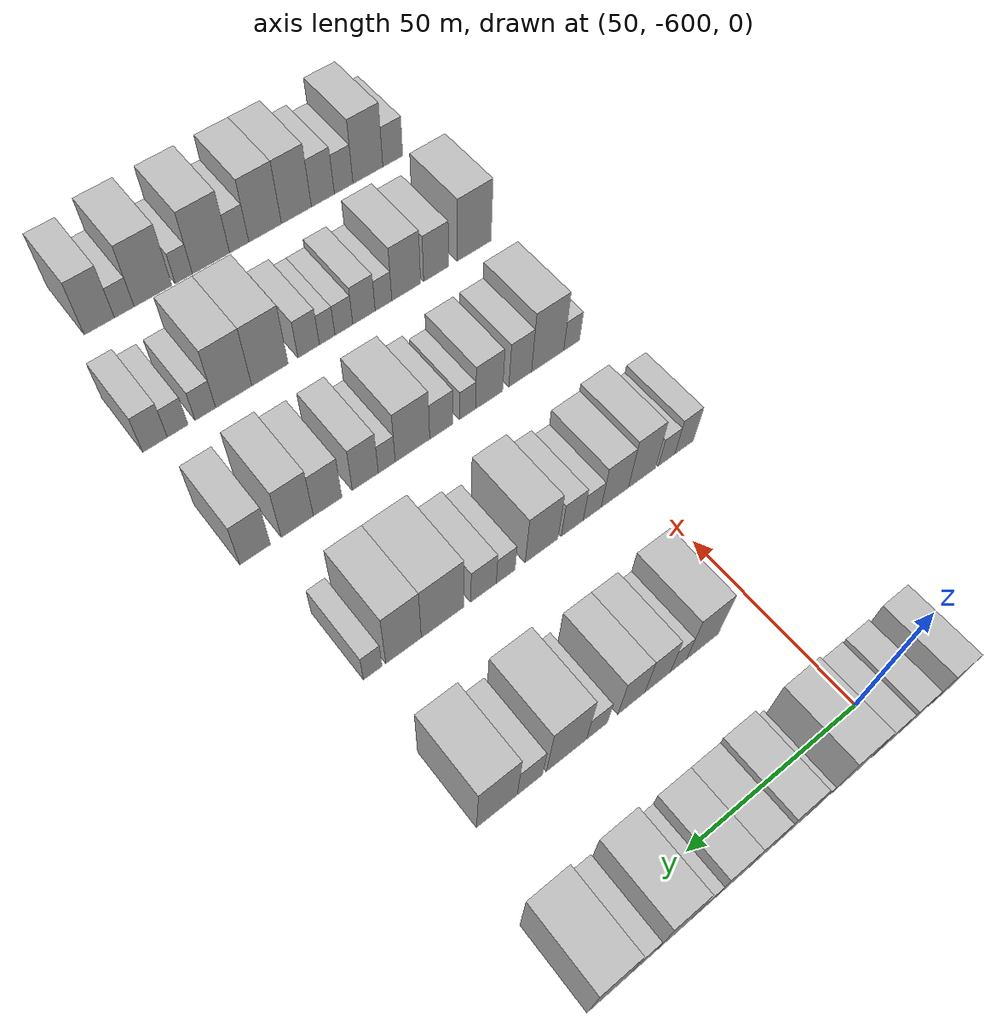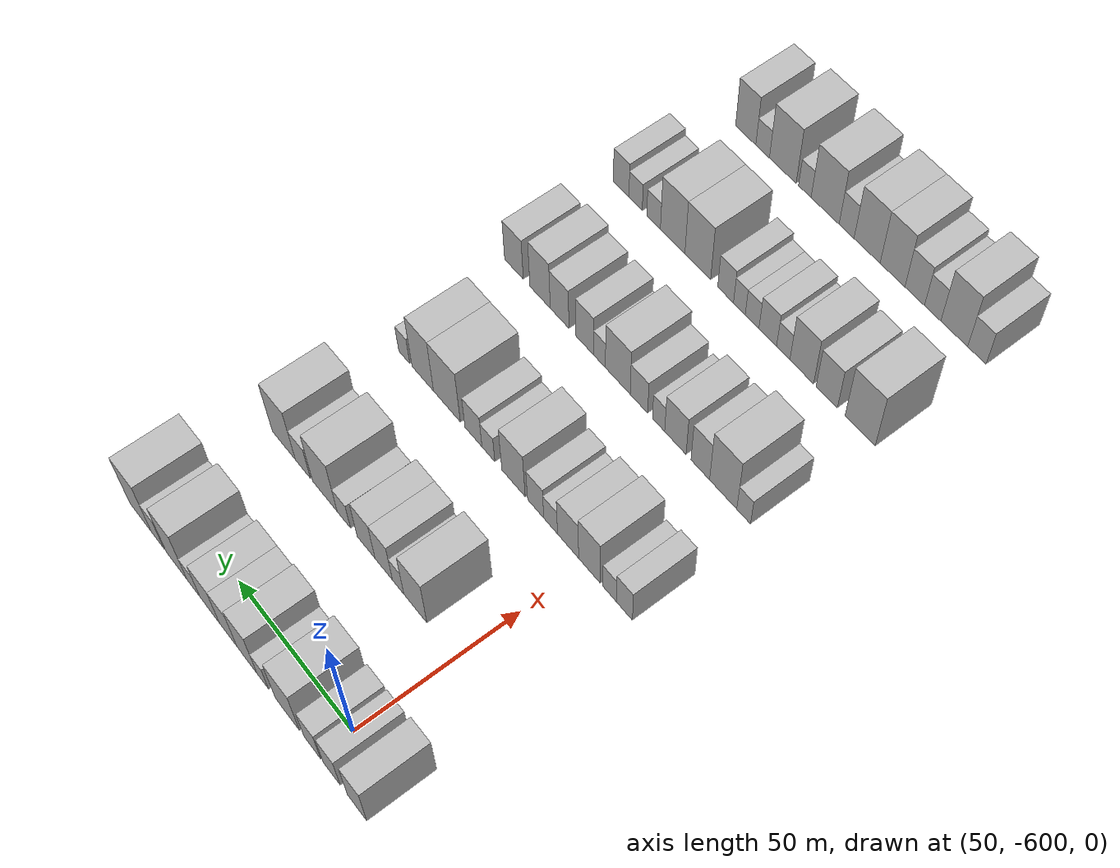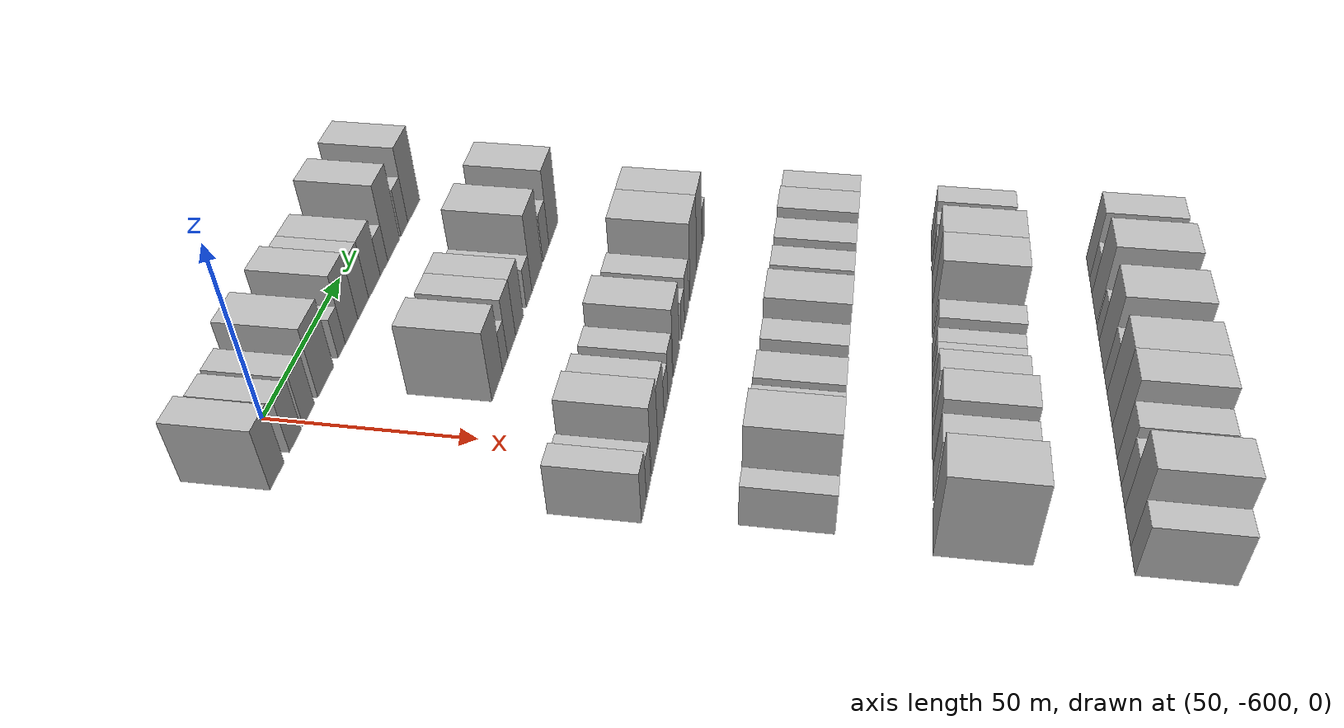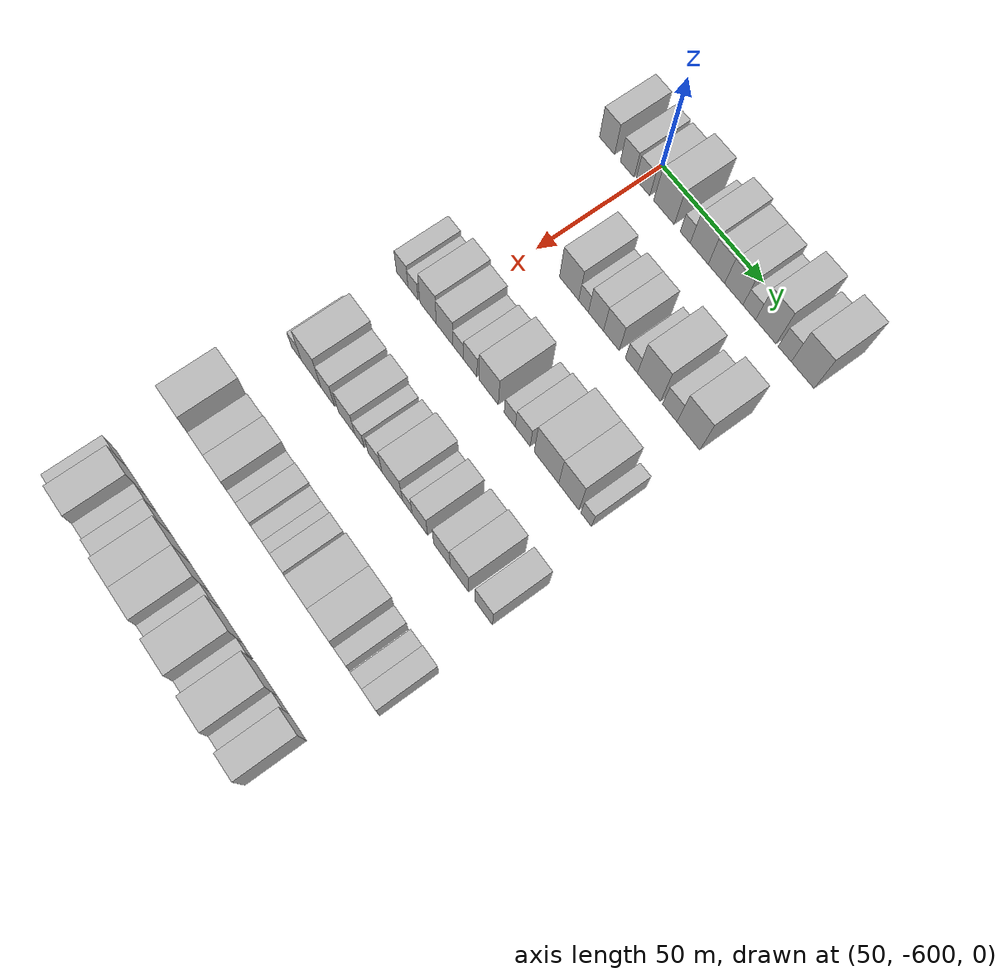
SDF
<sdf version="1.6">
 <world name="default">
  <model name="building_1">
   <static>1</static>
   <pose>50.0000 -616.0429 0 0.000000 0.000000 0.000000</pose>
   <link name="link">
    <pose>0 0 9.00 0 0 0</pose>
    <collision name="collision"><geometry><box><size>20.0000 7.9141 18.0000</size></box></geometry></collision>
    <visual name="visual">
     <cast_shadows>0</cast_shadows>
     <geometry><box><size>20.0000 7.9141 18.0000</size></box></geometry>
     <material>
      <script>
       <uri>model://HANNAS_wall/materials/scripts</uri>
       <uri>model://HANNAS_wall/materials/textures</uri>
       <name>vrc/HANNAS_wall</name>
      </script>
     </material>
    </visual>
   </link>
  </model>
  <model name="building_2">
   <static>1</static>
   <pose>50.0000 -605.5663 0 0.000000 0.000000 0.000000</pose>
   <link name="link">
    <pose>0 0 7.50 0 0 0</pose>
    <collision name="collision"><geometry><box><size>20.0000 7.0392 15.0000</size></box></geometry></collision>
    <visual name="visual">
     <cast_shadows>0</cast_shadows>
     <geometry><box><size>20.0000 7.0392 15.0000</size></box></geometry>
     <material>
      <script>
       <uri>model://HANNAS_wall/materials/scripts</uri>
       <uri>model://HANNAS_wall/materials/textures</uri>
       <name>vrc/HANNAS_wall</name>
      </script>
     </material>
    </visual>
   </link>
  </model>
  <model name="building_3">
   <static>1</static>
   <pose>50.0000 -597.5090 0 0.000000 0.000000 0.000000</pose>
   <link name="link">
    <pose>0 0 7.50 0 0 0</pose>
    <collision name="collision"><geometry><box><size>20.0000 7.0753 15.0000</size></box></geometry></collision>
    <visual name="visual">
     <cast_shadows>0</cast_shadows>
     <geometry><box><size>20.0000 7.0753 15.0000</size></box></geometry>
     <material>
      <script>
       <uri>model://HANNAS_wall/materials/scripts</uri>
       <uri>model://HANNAS_wall/materials/textures</uri>
       <name>vrc/HANNAS_wall</name>
      </script>
     </material>
    </visual>
   </link>
  </model>
  <model name="building_4">
   <static>1</static>
   <pose>50.0000 -586.7905 0 0.000000 0.000000 0.000000</pose>
   <link name="link">
    <pose>0 0 10.50 0 0 0</pose>
    <collision name="collision"><geometry><box><size>20.0000 10.3617 21.0000</size></box></geometry></collision>
    <visual name="visual">
     <cast_shadows>0</cast_shadows>
     <geometry><box><size>20.0000 10.3617 21.0000</size></box></geometry>
     <material>
      <script>
       <uri>model://HANNAS_wall/materials/scripts</uri>
       <uri>model://HANNAS_wall/materials/textures</uri>
       <name>vrc/HANNAS_wall</name>
      </script>
     </material>
    </visual>
   </link>
  </model>
  <model name="building_5">
   <static>1</static>
   <pose>50.0000 -576.1209 0 0.000000 0.000000 0.000000</pose>
   <link name="link">
    <pose>0 0 6.00 0 0 0</pose>
    <collision name="collision"><geometry><box><size>20.0000 4.9775 12.0000</size></box></geometry></collision>
    <visual name="visual">
     <cast_shadows>0</cast_shadows>
     <geometry><box><size>20.0000 4.9775 12.0000</size></box></geometry>
     <material>
      <script>
       <uri>model://HANNAS_wall/materials/scripts</uri>
       <uri>model://HANNAS_wall/materials/textures</uri>
       <name>vrc/HANNAS_wall</name>
      </script>
     </material>
    </visual>
   </link>
  </model>
  <model name="building_6">
   <static>1</static>
   <pose>50.0000 -569.1569 0 0.000000 0.000000 0.000000</pose>
   <link name="link">
    <pose>0 0 10.50 0 0 0</pose>
    <collision name="collision"><geometry><box><size>20.0000 8.9505 21.0000</size></box></geometry></collision>
    <visual name="visual">
     <cast_shadows>0</cast_shadows>
     <geometry><box><size>20.0000 8.9505 21.0000</size></box></geometry>
     <material>
      <script>
       <uri>model://HANNAS_wall/materials/scripts</uri>
       <uri>model://HANNAS_wall/materials/textures</uri>
       <name>vrc/HANNAS_wall</name>
      </script>
     </material>
    </visual>
   </link>
  </model>
  <model name="building_7">
   <static>1</static>
   <pose>50.0000 -560.7042 0 0.000000 0.000000 0.000000</pose>
   <link name="link">
    <pose>0 0 9.00 0 0 0</pose>
    <collision name="collision"><geometry><box><size>20.0000 7.9549 18.0000</size></box></geometry></collision>
    <visual name="visual">
     <cast_shadows>0</cast_shadows>
     <geometry><box><size>20.0000 7.9549 18.0000</size></box></geometry>
     <material>
      <script>
       <uri>model://HANNAS_wall/materials/scripts</uri>
       <uri>model://HANNAS_wall/materials/textures</uri>
       <name>vrc/HANNAS_wall</name>
      </script>
     </material>
    </visual>
   </link>
  </model>
  <model name="building_8">
   <static>1</static>
   <pose>50.0000 -552.2844 0 0.000000 0.000000 0.000000</pose>
   <link name="link">
    <pose>0 0 9.00 0 0 0</pose>
    <collision name="collision"><geometry><box><size>20.0000 8.8848 18.0000</size></box></geometry></collision>
    <visual name="visual">
     <cast_shadows>0</cast_shadows>
     <geometry><box><size>20.0000 8.8848 18.0000</size></box></geometry>
     <material>
      <script>
       <uri>model://HANNAS_wall/materials/scripts</uri>
       <uri>model://HANNAS_wall/materials/textures</uri>
       <name>vrc/HANNAS_wall</name>
      </script>
     </material>
    </visual>
   </link>
  </model>
  <model name="building_9">
   <static>1</static>
   <pose>50.0000 -544.8420 0 0.000000 0.000000 0.000000</pose>
   <link name="link">
    <pose>0 0 6.00 0 0 0</pose>
    <collision name="collision"><geometry><box><size>20.0000 5.9998 12.0000</size></box></geometry></collision>
    <visual name="visual">
     <cast_shadows>0</cast_shadows>
     <geometry><box><size>20.0000 5.9998 12.0000</size></box></geometry>
     <material>
      <script>
       <uri>model://HANNAS_wall/materials/scripts</uri>
       <uri>model://HANNAS_wall/materials/textures</uri>
       <name>vrc/HANNAS_wall</name>
      </script>
     </material>
    </visual>
   </link>
  </model>
  <model name="building_10">
   <static>1</static>
   <pose>50.0000 -536.9732 0 0.000000 0.000000 0.000000</pose>
   <link name="link">
    <pose>0 0 12.00 0 0 0</pose>
    <collision name="collision"><geometry><box><size>20.0000 9.7379 24.0000</size></box></geometry></collision>
    <visual name="visual">
     <cast_shadows>0</cast_shadows>
     <geometry><box><size>20.0000 9.7379 24.0000</size></box></geometry>
     <material>
      <script>
       <uri>model://HANNAS_wall/materials/scripts</uri>
       <uri>model://HANNAS_wall/materials/textures</uri>
       <name>vrc/HANNAS_wall</name>
      </script>
     </material>
    </visual>
   </link>
  </model>
  <model name="building_11">
   <static>1</static>
   <pose>50.0000 -528.0566 0 0.000000 0.000000 0.000000</pose>
   <link name="link">
    <pose>0 0 7.50 0 0 0</pose>
    <collision name="collision"><geometry><box><size>20.0000 6.0952 15.0000</size></box></geometry></collision>
    <visual name="visual">
     <cast_shadows>0</cast_shadows>
     <geometry><box><size>20.0000 6.0952 15.0000</size></box></geometry>
     <material>
      <script>
       <uri>model://HANNAS_wall/materials/scripts</uri>
       <uri>model://HANNAS_wall/materials/textures</uri>
       <name>vrc/HANNAS_wall</name>
      </script>
     </material>
    </visual>
   </link>
  </model>
  <model name="building_12">
   <static>1</static>
   <pose>50.0000 -519.7207 0 0.000000 0.000000 0.000000</pose>
   <link name="link">
    <pose>0 0 12.00 0 0 0</pose>
    <collision name="collision"><geometry><box><size>20.0000 10.5767 24.0000</size></box></geometry></collision>
    <visual name="visual">
     <cast_shadows>0</cast_shadows>
     <geometry><box><size>20.0000 10.5767 24.0000</size></box></geometry>
     <material>
      <script>
       <uri>model://HANNAS_wall/materials/scripts</uri>
       <uri>model://HANNAS_wall/materials/textures</uri>
       <name>vrc/HANNAS_wall</name>
      </script>
     </material>
    </visual>
   </link>
  </model>
  <model name="building_139">
   <static>1</static>
   <pose>90.0000 -583.3680 0 0.000000 0.000000 0.000000</pose>
   <link name="link">
    <pose>0 0 10.50 0 0 0</pose>
    <collision name="collision"><geometry><box><size>20.0000 9.7547 21.0000</size></box></geometry></collision>
    <visual name="visual">
     <cast_shadows>0</cast_shadows>
     <geometry><box><size>20.0000 9.7547 21.0000</size></box></geometry>
     <material>
      <script>
       <uri>model://HANNAS_wall/materials/scripts</uri>
       <uri>model://HANNAS_wall/materials/textures</uri>
       <name>vrc/HANNAS_wall</name>
      </script>
     </material>
    </visual>
   </link>
  </model>
  <model name="building_140">
   <static>1</static>
   <pose>90.0000 -576.0469 0 0.000000 0.000000 0.000000</pose>
   <link name="link">
    <pose>0 0 6.00 0 0 0</pose>
    <collision name="collision"><geometry><box><size>20.0000 4.8876 12.0000</size></box></geometry></collision>
    <visual name="visual">
     <cast_shadows>0</cast_shadows>
     <geometry><box><size>20.0000 4.8876 12.0000</size></box></geometry>
     <material>
      <script>
       <uri>model://HANNAS_wall/materials/scripts</uri>
       <uri>model://HANNAS_wall/materials/textures</uri>
       <name>vrc/HANNAS_wall</name>
      </script>
     </material>
    </visual>
   </link>
  </model>
  <model name="building_141">
   <static>1</static>
   <pose>90.0000 -569.8204 0 0.000000 0.000000 0.000000</pose>
   <link name="link">
    <pose>0 0 9.00 0 0 0</pose>
    <collision name="collision"><geometry><box><size>20.0000 7.5654 18.0000</size></box></geometry></collision>
    <visual name="visual">
     <cast_shadows>0</cast_shadows>
     <geometry><box><size>20.0000 7.5654 18.0000</size></box></geometry>
     <material>
      <script>
       <uri>model://HANNAS_wall/materials/scripts</uri>
       <uri>model://HANNAS_wall/materials/textures</uri>
       <name>vrc/HANNAS_wall</name>
      </script>
     </material>
    </visual>
   </link>
  </model>
  <model name="building_142">
   <static>1</static>
   <pose>90.0000 -562.1279 0 0.000000 0.000000 0.000000</pose>
   <link name="link">
    <pose>0 0 9.00 0 0 0</pose>
    <collision name="collision"><geometry><box><size>20.0000 7.8196 18.0000</size></box></geometry></collision>
    <visual name="visual">
     <cast_shadows>0</cast_shadows>
     <geometry><box><size>20.0000 7.8196 18.0000</size></box></geometry>
     <material>
      <script>
       <uri>model://HANNAS_wall/materials/scripts</uri>
       <uri>model://HANNAS_wall/materials/textures</uri>
       <name>vrc/HANNAS_wall</name>
      </script>
     </material>
    </visual>
   </link>
  </model>
  <model name="building_143">
   <static>1</static>
   <pose>90.0000 -552.2347 0 0.000000 0.000000 0.000000</pose>
   <link name="link">
    <pose>0 0 6.00 0 0 0</pose>
    <collision name="collision"><geometry><box><size>20.0000 5.9668 12.0000</size></box></geometry></collision>
    <visual name="visual">
     <cast_shadows>0</cast_shadows>
     <geometry><box><size>20.0000 5.9668 12.0000</size></box></geometry>
     <material>
      <script>
       <uri>model://HANNAS_wall/materials/scripts</uri>
       <uri>model://HANNAS_wall/materials/textures</uri>
       <name>vrc/HANNAS_wall</name>
      </script>
     </material>
    </visual>
   </link>
  </model>
  <model name="building_144">
   <static>1</static>
   <pose>90.0000 -543.6859 0 0.000000 0.000000 0.000000</pose>
   <link name="link">
    <pose>0 0 12.00 0 0 0</pose>
    <collision name="collision"><geometry><box><size>20.0000 11.1310 24.0000</size></box></geometry></collision>
    <visual name="visual">
     <cast_shadows>0</cast_shadows>
     <geometry><box><size>20.0000 11.1310 24.0000</size></box></geometry>
     <material>
      <script>
       <uri>model://HANNAS_wall/materials/scripts</uri>
       <uri>model://HANNAS_wall/materials/textures</uri>
       <name>vrc/HANNAS_wall</name>
      </script>
     </material>
    </visual>
   </link>
  </model>
  <model name="building_145">
   <static>1</static>
   <pose>90.0000 -533.6597 0 0.000000 0.000000 0.000000</pose>
   <link name="link">
    <pose>0 0 7.50 0 0 0</pose>
    <collision name="collision"><geometry><box><size>20.0000 6.9213 15.0000</size></box></geometry></collision>
    <visual name="visual">
     <cast_shadows>0</cast_shadows>
     <geometry><box><size>20.0000 6.9213 15.0000</size></box></geometry>
     <material>
      <script>
       <uri>model://HANNAS_wall/materials/scripts</uri>
       <uri>model://HANNAS_wall/materials/textures</uri>
       <name>vrc/HANNAS_wall</name>
      </script>
     </material>
    </visual>
   </link>
  </model>
  <model name="building_146">
   <static>1</static>
   <pose>90.0000 -524.8179 0 0.000000 0.000000 0.000000</pose>
   <link name="link">
    <pose>0 0 12.00 0 0 0</pose>
    <collision name="collision"><geometry><box><size>20.0000 10.7624 24.0000</size></box></geometry></collision>
    <visual name="visual">
     <cast_shadows>0</cast_shadows>
     <geometry><box><size>20.0000 10.7624 24.0000</size></box></geometry>
     <material>
      <script>
       <uri>model://HANNAS_wall/materials/scripts</uri>
       <uri>model://HANNAS_wall/materials/textures</uri>
       <name>vrc/HANNAS_wall</name>
      </script>
     </material>
    </visual>
   </link>
  </model>
  <model name="building_273">
   <static>1</static>
   <pose>130.0000 -615.8726 0 0.000000 0.000000 0.000000</pose>
   <link name="link">
    <pose>0 0 7.50 0 0 0</pose>
    <collision name="collision"><geometry><box><size>20.0000 6.2548 15.0000</size></box></geometry></collision>
    <visual name="visual">
     <cast_shadows>0</cast_shadows>
     <geometry><box><size>20.0000 6.2548 15.0000</size></box></geometry>
     <material>
      <script>
       <uri>model://HANNAS_wall/materials/scripts</uri>
       <uri>model://HANNAS_wall/materials/textures</uri>
       <name>vrc/HANNAS_wall</name>
      </script>
     </material>
    </visual>
   </link>
  </model>
  <model name="building_274">
   <static>1</static>
   <pose>130.0000 -610.0368 0 0.000000 0.000000 0.000000</pose>
   <link name="link">
    <pose>0 0 6.00 0 0 0</pose>
    <collision name="collision"><geometry><box><size>20.0000 5.4168 12.0000</size></box></geometry></collision>
    <visual name="visual">
     <cast_shadows>0</cast_shadows>
     <geometry><box><size>20.0000 5.4168 12.0000</size></box></geometry>
     <material>
      <script>
       <uri>model://HANNAS_wall/materials/scripts</uri>
       <uri>model://HANNAS_wall/materials/textures</uri>
       <name>vrc/HANNAS_wall</name>
      </script>
     </material>
    </visual>
   </link>
  </model>
  <model name="building_275">
   <static>1</static>
   <pose>130.0000 -601.9514 0 0.000000 0.000000 0.000000</pose>
   <link name="link">
    <pose>0 0 10.50 0 0 0</pose>
    <collision name="collision"><geometry><box><size>20.0000 8.7539 21.0000</size></box></geometry></collision>
    <visual name="visual">
     <cast_shadows>0</cast_shadows>
     <geometry><box><size>20.0000 8.7539 21.0000</size></box></geometry>
     <material>
      <script>
       <uri>model://HANNAS_wall/materials/scripts</uri>
       <uri>model://HANNAS_wall/materials/textures</uri>
       <name>vrc/HANNAS_wall</name>
      </script>
     </material>
    </visual>
   </link>
  </model>
  <model name="building_276">
   <static>1</static>
   <pose>130.0000 -593.2582 0 0.000000 0.000000 0.000000</pose>
   <link name="link">
    <pose>0 0 9.00 0 0 0</pose>
    <collision name="collision"><geometry><box><size>20.0000 8.6323 18.0000</size></box></geometry></collision>
    <visual name="visual">
     <cast_shadows>0</cast_shadows>
     <geometry><box><size>20.0000 8.6323 18.0000</size></box></geometry>
     <material>
      <script>
       <uri>model://HANNAS_wall/materials/scripts</uri>
       <uri>model://HANNAS_wall/materials/textures</uri>
       <name>vrc/HANNAS_wall</name>
      </script>
     </material>
    </visual>
   </link>
  </model>
  <model name="building_277">
   <static>1</static>
   <pose>130.0000 -586.0995 0 0.000000 0.000000 0.000000</pose>
   <link name="link">
    <pose>0 0 6.00 0 0 0</pose>
    <collision name="collision"><geometry><box><size>20.0000 5.6850 12.0000</size></box></geometry></collision>
    <visual name="visual">
     <cast_shadows>0</cast_shadows>
     <geometry><box><size>20.0000 5.6850 12.0000</size></box></geometry>
     <material>
      <script>
       <uri>model://HANNAS_wall/materials/scripts</uri>
       <uri>model://HANNAS_wall/materials/textures</uri>
       <name>vrc/HANNAS_wall</name>
      </script>
     </material>
    </visual>
   </link>
  </model>
  <model name="building_278">
   <static>1</static>
   <pose>130.0000 -579.8710 0 0.000000 0.000000 0.000000</pose>
   <link name="link">
    <pose>0 0 7.50 0 0 0</pose>
    <collision name="collision"><geometry><box><size>20.0000 6.7720 15.0000</size></box></geometry></collision>
    <visual name="visual">
     <cast_shadows>0</cast_shadows>
     <geometry><box><size>20.0000 6.7720 15.0000</size></box></geometry>
     <material>
      <script>
       <uri>model://HANNAS_wall/materials/scripts</uri>
       <uri>model://HANNAS_wall/materials/textures</uri>
       <name>vrc/HANNAS_wall</name>
      </script>
     </material>
    </visual>
   </link>
  </model>
  <model name="building_279">
   <static>1</static>
   <pose>130.0000 -570.5267 0 0.000000 0.000000 0.000000</pose>
   <link name="link">
    <pose>0 0 10.50 0 0 0</pose>
    <collision name="collision"><geometry><box><size>20.0000 9.9166 21.0000</size></box></geometry></collision>
    <visual name="visual">
     <cast_shadows>0</cast_shadows>
     <geometry><box><size>20.0000 9.9166 21.0000</size></box></geometry>
     <material>
      <script>
       <uri>model://HANNAS_wall/materials/scripts</uri>
       <uri>model://HANNAS_wall/materials/textures</uri>
       <name>vrc/HANNAS_wall</name>
      </script>
     </material>
    </visual>
   </link>
  </model>
  <model name="building_280">
   <static>1</static>
   <pose>130.0000 -559.7854 0 0.000000 0.000000 0.000000</pose>
   <link name="link">
    <pose>0 0 6.00 0 0 0</pose>
    <collision name="collision"><geometry><box><size>20.0000 5.5660 12.0000</size></box></geometry></collision>
    <visual name="visual">
     <cast_shadows>0</cast_shadows>
     <geometry><box><size>20.0000 5.5660 12.0000</size></box></geometry>
     <material>
      <script>
       <uri>model://HANNAS_wall/materials/scripts</uri>
       <uri>model://HANNAS_wall/materials/textures</uri>
       <name>vrc/HANNAS_wall</name>
      </script>
     </material>
    </visual>
   </link>
  </model>
  <model name="building_281">
   <static>1</static>
   <pose>130.0000 -553.2885 0 0.000000 0.000000 0.000000</pose>
   <link name="link">
    <pose>0 0 7.50 0 0 0</pose>
    <collision name="collision"><geometry><box><size>20.0000 7.4278 15.0000</size></box></geometry></collision>
    <visual name="visual">
     <cast_shadows>0</cast_shadows>
     <geometry><box><size>20.0000 7.4278 15.0000</size></box></geometry>
     <material>
      <script>
       <uri>model://HANNAS_wall/materials/scripts</uri>
       <uri>model://HANNAS_wall/materials/textures</uri>
       <name>vrc/HANNAS_wall</name>
      </script>
     </material>
    </visual>
   </link>
  </model>
  <model name="building_282">
   <static>1</static>
   <pose>130.0000 -541.5813 0 0.000000 0.000000 0.000000</pose>
   <link name="link">
    <pose>0 0 12.00 0 0 0</pose>
    <collision name="collision"><geometry><box><size>20.0000 11.9864 24.0000</size></box></geometry></collision>
    <visual name="visual">
     <cast_shadows>0</cast_shadows>
     <geometry><box><size>20.0000 11.9864 24.0000</size></box></geometry>
     <material>
      <script>
       <uri>model://HANNAS_wall/materials/scripts</uri>
       <uri>model://HANNAS_wall/materials/textures</uri>
       <name>vrc/HANNAS_wall</name>
      </script>
     </material>
    </visual>
   </link>
  </model>
  <model name="building_283">
   <static>1</static>
   <pose>130.0000 -530.6979 0 0.000000 0.000000 0.000000</pose>
   <link name="link">
    <pose>0 0 12.00 0 0 0</pose>
    <collision name="collision"><geometry><box><size>20.0000 9.7806 24.0000</size></box></geometry></collision>
    <visual name="visual">
     <cast_shadows>0</cast_shadows>
     <geometry><box><size>20.0000 9.7806 24.0000</size></box></geometry>
     <material>
      <script>
       <uri>model://HANNAS_wall/materials/scripts</uri>
       <uri>model://HANNAS_wall/materials/textures</uri>
       <name>vrc/HANNAS_wall</name>
      </script>
     </material>
    </visual>
   </link>
  </model>
  <model name="building_284">
   <static>1</static>
   <pose>130.0000 -522.2868 0 0.000000 0.000000 0.000000</pose>
   <link name="link">
    <pose>0 0 6.00 0 0 0</pose>
    <collision name="collision"><geometry><box><size>20.0000 5.0415 12.0000</size></box></geometry></collision>
    <visual name="visual">
     <cast_shadows>0</cast_shadows>
     <geometry><box><size>20.0000 5.0415 12.0000</size></box></geometry>
     <material>
      <script>
       <uri>model://HANNAS_wall/materials/scripts</uri>
       <uri>model://HANNAS_wall/materials/textures</uri>
       <name>vrc/HANNAS_wall</name>
      </script>
     </material>
    </visual>
   </link>
  </model>
  <model name="building_414">
   <static>1</static>
   <pose>170.0000 -614.3152 0 0.000000 0.000000 0.000000</pose>
   <link name="link">
    <pose>0 0 6.00 0 0 0</pose>
    <collision name="collision"><geometry><box><size>20.0000 5.3696 12.0000</size></box></geometry></collision>
    <visual name="visual">
     <cast_shadows>0</cast_shadows>
     <geometry><box><size>20.0000 5.3696 12.0000</size></box></geometry>
     <material>
      <script>
       <uri>model://HANNAS_wall/materials/scripts</uri>
       <uri>model://HANNAS_wall/materials/textures</uri>
       <name>vrc/HANNAS_wall</name>
      </script>
     </material>
    </visual>
   </link>
  </model>
  <model name="building_415">
   <static>1</static>
   <pose>170.0000 -606.2697 0 0.000000 0.000000 0.000000</pose>
   <link name="link">
    <pose>0 0 12.00 0 0 0</pose>
    <collision name="collision"><geometry><box><size>20.0000 10.7214 24.0000</size></box></geometry></collision>
    <visual name="visual">
     <cast_shadows>0</cast_shadows>
     <geometry><box><size>20.0000 10.7214 24.0000</size></box></geometry>
     <material>
      <script>
       <uri>model://HANNAS_wall/materials/scripts</uri>
       <uri>model://HANNAS_wall/materials/textures</uri>
       <name>vrc/HANNAS_wall</name>
      </script>
     </material>
    </visual>
   </link>
  </model>
  <model name="building_416">
   <static>1</static>
   <pose>170.0000 -597.2026 0 0.000000 0.000000 0.000000</pose>
   <link name="link">
    <pose>0 0 9.00 0 0 0</pose>
    <collision name="collision"><geometry><box><size>20.0000 7.4129 18.0000</size></box></geometry></collision>
    <visual name="visual">
     <cast_shadows>0</cast_shadows>
     <geometry><box><size>20.0000 7.4129 18.0000</size></box></geometry>
     <material>
      <script>
       <uri>model://HANNAS_wall/materials/scripts</uri>
       <uri>model://HANNAS_wall/materials/textures</uri>
       <name>vrc/HANNAS_wall</name>
      </script>
     </material>
    </visual>
   </link>
  </model>
  <model name="building_417">
   <static>1</static>
   <pose>170.0000 -587.1444 0 0.000000 0.000000 0.000000</pose>
   <link name="link">
    <pose>0 0 9.00 0 0 0</pose>
    <collision name="collision"><geometry><box><size>20.0000 8.7034 18.0000</size></box></geometry></collision>
    <visual name="visual">
     <cast_shadows>0</cast_shadows>
     <geometry><box><size>20.0000 8.7034 18.0000</size></box></geometry>
     <material>
      <script>
       <uri>model://HANNAS_wall/materials/scripts</uri>
       <uri>model://HANNAS_wall/materials/textures</uri>
       <name>vrc/HANNAS_wall</name>
      </script>
     </material>
    </visual>
   </link>
  </model>
  <model name="building_418">
   <static>1</static>
   <pose>170.0000 -580.2808 0 0.000000 0.000000 0.000000</pose>
   <link name="link">
    <pose>0 0 6.00 0 0 0</pose>
    <collision name="collision"><geometry><box><size>20.0000 5.0240 12.0000</size></box></geometry></collision>
    <visual name="visual">
     <cast_shadows>0</cast_shadows>
     <geometry><box><size>20.0000 5.0240 12.0000</size></box></geometry>
     <material>
      <script>
       <uri>model://HANNAS_wall/materials/scripts</uri>
       <uri>model://HANNAS_wall/materials/textures</uri>
       <name>vrc/HANNAS_wall</name>
      </script>
     </material>
    </visual>
   </link>
  </model>
  <model name="building_419">
   <static>1</static>
   <pose>170.0000 -572.1450 0 0.000000 0.000000 0.000000</pose>
   <link name="link">
    <pose>0 0 7.50 0 0 0</pose>
    <collision name="collision"><geometry><box><size>20.0000 7.2475 15.0000</size></box></geometry></collision>
    <visual name="visual">
     <cast_shadows>0</cast_shadows>
     <geometry><box><size>20.0000 7.2475 15.0000</size></box></geometry>
     <material>
      <script>
       <uri>model://HANNAS_wall/materials/scripts</uri>
       <uri>model://HANNAS_wall/materials/textures</uri>
       <name>vrc/HANNAS_wall</name>
      </script>
     </material>
    </visual>
   </link>
  </model>
  <model name="building_420">
   <static>1</static>
   <pose>170.0000 -563.2833 0 0.000000 0.000000 0.000000</pose>
   <link name="link">
    <pose>0 0 10.50 0 0 0</pose>
    <collision name="collision"><geometry><box><size>20.0000 10.4760 21.0000</size></box></geometry></collision>
    <visual name="visual">
     <cast_shadows>0</cast_shadows>
     <geometry><box><size>20.0000 10.4760 21.0000</size></box></geometry>
     <material>
      <script>
       <uri>model://HANNAS_wall/materials/scripts</uri>
       <uri>model://HANNAS_wall/materials/textures</uri>
       <name>vrc/HANNAS_wall</name>
      </script>
     </material>
    </visual>
   </link>
  </model>
  <model name="building_421">
   <static>1</static>
   <pose>170.0000 -555.5232 0 0.000000 0.000000 0.000000</pose>
   <link name="link">
    <pose>0 0 6.00 0 0 0</pose>
    <collision name="collision"><geometry><box><size>20.0000 5.0442 12.0000</size></box></geometry></collision>
    <visual name="visual">
     <cast_shadows>0</cast_shadows>
     <geometry><box><size>20.0000 5.0442 12.0000</size></box></geometry>
     <material>
      <script>
       <uri>model://HANNAS_wall/materials/scripts</uri>
       <uri>model://HANNAS_wall/materials/textures</uri>
       <name>vrc/HANNAS_wall</name>
      </script>
     </material>
    </visual>
   </link>
  </model>
  <model name="building_422">
   <static>1</static>
   <pose>170.0000 -549.1558 0 0.000000 0.000000 0.000000</pose>
   <link name="link">
    <pose>0 0 9.00 0 0 0</pose>
    <collision name="collision"><geometry><box><size>20.0000 7.6904 18.0000</size></box></geometry></collision>
    <visual name="visual">
     <cast_shadows>0</cast_shadows>
     <geometry><box><size>20.0000 7.6904 18.0000</size></box></geometry>
     <material>
      <script>
       <uri>model://HANNAS_wall/materials/scripts</uri>
       <uri>model://HANNAS_wall/materials/textures</uri>
       <name>vrc/HANNAS_wall</name>
      </script>
     </material>
    </visual>
   </link>
  </model>
  <model name="building_423">
   <static>1</static>
   <pose>170.0000 -538.1978 0 0.000000 0.000000 0.000000</pose>
   <link name="link">
    <pose>0 0 9.00 0 0 0</pose>
    <collision name="collision"><geometry><box><size>20.0000 8.2257 18.0000</size></box></geometry></collision>
    <visual name="visual">
     <cast_shadows>0</cast_shadows>
     <geometry><box><size>20.0000 8.2257 18.0000</size></box></geometry>
     <material>
      <script>
       <uri>model://HANNAS_wall/materials/scripts</uri>
       <uri>model://HANNAS_wall/materials/textures</uri>
       <name>vrc/HANNAS_wall</name>
      </script>
     </material>
    </visual>
   </link>
  </model>
  <model name="building_424">
   <static>1</static>
   <pose>170.0000 -529.5459 0 0.000000 0.000000 0.000000</pose>
   <link name="link">
    <pose>0 0 10.50 0 0 0</pose>
    <collision name="collision"><geometry><box><size>20.0000 9.0779 21.0000</size></box></geometry></collision>
    <visual name="visual">
     <cast_shadows>0</cast_shadows>
     <geometry><box><size>20.0000 9.0779 21.0000</size></box></geometry>
     <material>
      <script>
       <uri>model://HANNAS_wall/materials/scripts</uri>
       <uri>model://HANNAS_wall/materials/textures</uri>
       <name>vrc/HANNAS_wall</name>
      </script>
     </material>
    </visual>
   </link>
  </model>
  <model name="building_425">
   <static>1</static>
   <pose>170.0000 -517.7872 0 0.000000 0.000000 0.000000</pose>
   <link name="link">
    <pose>0 0 9.00 0 0 0</pose>
    <collision name="collision"><geometry><box><size>20.0000 8.4395 18.0000</size></box></geometry></collision>
    <visual name="visual">
     <cast_shadows>0</cast_shadows>
     <geometry><box><size>20.0000 8.4395 18.0000</size></box></geometry>
     <material>
      <script>
       <uri>model://HANNAS_wall/materials/scripts</uri>
       <uri>model://HANNAS_wall/materials/textures</uri>
       <name>vrc/HANNAS_wall</name>
      </script>
     </material>
    </visual>
   </link>
  </model>
  <model name="building_547">
   <static>1</static>
   <pose>210.0000 -614.2096 0 0.000000 0.000000 0.000000</pose>
   <link name="link">
    <pose>0 0 12.00 0 0 0</pose>
    <collision name="collision"><geometry><box><size>20.0000 11.5808 24.0000</size></box></geometry></collision>
    <visual name="visual">
     <cast_shadows>0</cast_shadows>
     <geometry><box><size>20.0000 11.5808 24.0000</size></box></geometry>
     <material>
      <script>
       <uri>model://HANNAS_wall/materials/scripts</uri>
       <uri>model://HANNAS_wall/materials/textures</uri>
       <name>vrc/HANNAS_wall</name>
      </script>
     </material>
    </visual>
   </link>
  </model>
  <model name="building_548">
   <static>1</static>
   <pose>210.0000 -601.2410 0 0.000000 0.000000 0.000000</pose>
   <link name="link">
    <pose>0 0 9.00 0 0 0</pose>
    <collision name="collision"><geometry><box><size>20.0000 8.3565 18.0000</size></box></geometry></collision>
    <visual name="visual">
     <cast_shadows>0</cast_shadows>
     <geometry><box><size>20.0000 8.3565 18.0000</size></box></geometry>
     <material>
      <script>
       <uri>model://HANNAS_wall/materials/scripts</uri>
       <uri>model://HANNAS_wall/materials/textures</uri>
       <name>vrc/HANNAS_wall</name>
      </script>
     </material>
    </visual>
   </link>
  </model>
  <model name="building_549">
   <static>1</static>
   <pose>210.0000 -591.3188 0 0.000000 0.000000 0.000000</pose>
   <link name="link">
    <pose>0 0 10.50 0 0 0</pose>
    <collision name="collision"><geometry><box><size>20.0000 9.4879 21.0000</size></box></geometry></collision>
    <visual name="visual">
     <cast_shadows>0</cast_shadows>
     <geometry><box><size>20.0000 9.4879 21.0000</size></box></geometry>
     <material>
      <script>
       <uri>model://HANNAS_wall/materials/scripts</uri>
       <uri>model://HANNAS_wall/materials/textures</uri>
       <name>vrc/HANNAS_wall</name>
      </script>
     </material>
    </visual>
   </link>
  </model>
  <model name="building_550">
   <static>1</static>
   <pose>210.0000 -583.8834 0 0.000000 0.000000 0.000000</pose>
   <link name="link">
    <pose>0 0 6.00 0 0 0</pose>
    <collision name="collision"><geometry><box><size>20.0000 5.3828 12.0000</size></box></geometry></collision>
    <visual name="visual">
     <cast_shadows>0</cast_shadows>
     <geometry><box><size>20.0000 5.3828 12.0000</size></box></geometry>
     <material>
      <script>
       <uri>model://HANNAS_wall/materials/scripts</uri>
       <uri>model://HANNAS_wall/materials/textures</uri>
       <name>vrc/HANNAS_wall</name>
      </script>
     </material>
    </visual>
   </link>
  </model>
  <model name="building_551">
   <static>1</static>
   <pose>210.0000 -577.6034 0 0.000000 0.000000 0.000000</pose>
   <link name="link">
    <pose>0 0 7.50 0 0 0</pose>
    <collision name="collision"><geometry><box><size>20.0000 7.1772 15.0000</size></box></geometry></collision>
    <visual name="visual">
     <cast_shadows>0</cast_shadows>
     <geometry><box><size>20.0000 7.1772 15.0000</size></box></geometry>
     <material>
      <script>
       <uri>model://HANNAS_wall/materials/scripts</uri>
       <uri>model://HANNAS_wall/materials/textures</uri>
       <name>vrc/HANNAS_wall</name>
      </script>
     </material>
    </visual>
   </link>
  </model>
  <model name="building_552">
   <static>1</static>
   <pose>210.0000 -571.1984 0 0.000000 0.000000 0.000000</pose>
   <link name="link">
    <pose>0 0 6.00 0 0 0</pose>
    <collision name="collision"><geometry><box><size>20.0000 5.6328 12.0000</size></box></geometry></collision>
    <visual name="visual">
     <cast_shadows>0</cast_shadows>
     <geometry><box><size>20.0000 5.6328 12.0000</size></box></geometry>
     <material>
      <script>
       <uri>model://HANNAS_wall/materials/scripts</uri>
       <uri>model://HANNAS_wall/materials/textures</uri>
       <name>vrc/HANNAS_wall</name>
      </script>
     </material>
    </visual>
   </link>
  </model>
  <model name="building_553">
   <static>1</static>
   <pose>210.0000 -565.9412 0 0.000000 0.000000 0.000000</pose>
   <link name="link">
    <pose>0 0 6.00 0 0 0</pose>
    <collision name="collision"><geometry><box><size>20.0000 4.8817 12.0000</size></box></geometry></collision>
    <visual name="visual">
     <cast_shadows>0</cast_shadows>
     <geometry><box><size>20.0000 4.8817 12.0000</size></box></geometry>
     <material>
      <script>
       <uri>model://HANNAS_wall/materials/scripts</uri>
       <uri>model://HANNAS_wall/materials/textures</uri>
       <name>vrc/HANNAS_wall</name>
      </script>
     </material>
    </visual>
   </link>
  </model>
  <model name="building_554">
   <static>1</static>
   <pose>210.0000 -560.1895 0 0.000000 0.000000 0.000000</pose>
   <link name="link">
    <pose>0 0 7.50 0 0 0</pose>
    <collision name="collision"><geometry><box><size>20.0000 6.6217 15.0000</size></box></geometry></collision>
    <visual name="visual">
     <cast_shadows>0</cast_shadows>
     <geometry><box><size>20.0000 6.6217 15.0000</size></box></geometry>
     <material>
      <script>
       <uri>model://HANNAS_wall/materials/scripts</uri>
       <uri>model://HANNAS_wall/materials/textures</uri>
       <name>vrc/HANNAS_wall</name>
      </script>
     </material>
    </visual>
   </link>
  </model>
  <model name="building_555">
   <static>1</static>
   <pose>210.0000 -548.3860 0 0.000000 0.000000 0.000000</pose>
   <link name="link">
    <pose>0 0 12.00 0 0 0</pose>
    <collision name="collision"><geometry><box><size>20.0000 10.9852 24.0000</size></box></geometry></collision>
    <visual name="visual">
     <cast_shadows>0</cast_shadows>
     <geometry><box><size>20.0000 10.9852 24.0000</size></box></geometry>
     <material>
      <script>
       <uri>model://HANNAS_wall/materials/scripts</uri>
       <uri>model://HANNAS_wall/materials/textures</uri>
       <name>vrc/HANNAS_wall</name>
      </script>
     </material>
    </visual>
   </link>
  </model>
  <model name="building_556">
   <static>1</static>
   <pose>210.0000 -537.5680 0 0.000000 0.000000 0.000000</pose>
   <link name="link">
    <pose>0 0 12.00 0 0 0</pose>
    <collision name="collision"><geometry><box><size>20.0000 10.6510 24.0000</size></box></geometry></collision>
    <visual name="visual">
     <cast_shadows>0</cast_shadows>
     <geometry><box><size>20.0000 10.6510 24.0000</size></box></geometry>
     <material>
      <script>
       <uri>model://HANNAS_wall/materials/scripts</uri>
       <uri>model://HANNAS_wall/materials/textures</uri>
       <name>vrc/HANNAS_wall</name>
      </script>
     </material>
    </visual>
   </link>
  </model>
  <model name="building_557">
   <static>1</static>
   <pose>210.0000 -529.2520 0 0.000000 0.000000 0.000000</pose>
   <link name="link">
    <pose>0 0 6.00 0 0 0</pose>
    <collision name="collision"><geometry><box><size>20.0000 5.9809 12.0000</size></box></geometry></collision>
    <visual name="visual">
     <cast_shadows>0</cast_shadows>
     <geometry><box><size>20.0000 5.9809 12.0000</size></box></geometry>
     <material>
      <script>
       <uri>model://HANNAS_wall/materials/scripts</uri>
       <uri>model://HANNAS_wall/materials/textures</uri>
       <name>vrc/HANNAS_wall</name>
      </script>
     </material>
    </visual>
   </link>
  </model>
  <model name="building_558">
   <static>1</static>
   <pose>210.0000 -521.3040 0 0.000000 0.000000 0.000000</pose>
   <link name="link">
    <pose>0 0 6.00 0 0 0</pose>
    <collision name="collision"><geometry><box><size>20.0000 5.9152 12.0000</size></box></geometry></collision>
    <visual name="visual">
     <cast_shadows>0</cast_shadows>
     <geometry><box><size>20.0000 5.9152 12.0000</size></box></geometry>
     <material>
      <script>
       <uri>model://HANNAS_wall/materials/scripts</uri>
       <uri>model://HANNAS_wall/materials/textures</uri>
       <name>vrc/HANNAS_wall</name>
      </script>
     </material>
    </visual>
   </link>
  </model>
  <model name="building_559">
   <static>1</static>
   <pose>210.0000 -514.8726 0 0.000000 0.000000 0.000000</pose>
   <link name="link">
    <pose>0 0 7.50 0 0 0</pose>
    <collision name="collision"><geometry><box><size>20.0000 6.9475 15.0000</size></box></geometry></collision>
    <visual name="visual">
     <cast_shadows>0</cast_shadows>
     <geometry><box><size>20.0000 6.9475 15.0000</size></box></geometry>
     <material>
      <script>
       <uri>model://HANNAS_wall/materials/scripts</uri>
       <uri>model://HANNAS_wall/materials/textures</uri>
       <name>vrc/HANNAS_wall</name>
      </script>
     </material>
    </visual>
   </link>
  </model>
  <model name="building_684">
   <static>1</static>
   <pose>250.0000 -616.4976 0 0.000000 0.000000 0.000000</pose>
   <link name="link">
    <pose>0 0 7.50 0 0 0</pose>
    <collision name="collision"><geometry><box><size>20.0000 7.0048 15.0000</size></box></geometry></collision>
    <visual name="visual">
     <cast_shadows>0</cast_shadows>
     <geometry><box><size>20.0000 7.0048 15.0000</size></box></geometry>
     <material>
      <script>
       <uri>model://HANNAS_wall/materials/scripts</uri>
       <uri>model://HANNAS_wall/materials/textures</uri>
       <name>vrc/HANNAS_wall</name>
      </script>
     </material>
    </visual>
   </link>
  </model>
  <model name="building_685">
   <static>1</static>
   <pose>250.0000 -607.8157 0 0.000000 0.000000 0.000000</pose>
   <link name="link">
    <pose>0 0 12.00 0 0 0</pose>
    <collision name="collision"><geometry><box><size>20.0000 10.3589 24.0000</size></box></geometry></collision>
    <visual name="visual">
     <cast_shadows>0</cast_shadows>
     <geometry><box><size>20.0000 10.3589 24.0000</size></box></geometry>
     <material>
      <script>
       <uri>model://HANNAS_wall/materials/scripts</uri>
       <uri>model://HANNAS_wall/materials/textures</uri>
       <name>vrc/HANNAS_wall</name>
      </script>
     </material>
    </visual>
   </link>
  </model>
  <model name="building_686">
   <static>1</static>
   <pose>250.0000 -599.4499 0 0.000000 0.000000 0.000000</pose>
   <link name="link">
    <pose>0 0 7.50 0 0 0</pose>
    <collision name="collision"><geometry><box><size>20.0000 6.3728 15.0000</size></box></geometry></collision>
    <visual name="visual">
     <cast_shadows>0</cast_shadows>
     <geometry><box><size>20.0000 6.3728 15.0000</size></box></geometry>
     <material>
      <script>
       <uri>model://HANNAS_wall/materials/scripts</uri>
       <uri>model://HANNAS_wall/materials/textures</uri>
       <name>vrc/HANNAS_wall</name>
      </script>
     </material>
    </visual>
   </link>
  </model>
  <model name="building_687">
   <static>1</static>
   <pose>250.0000 -592.3955 0 0.000000 0.000000 0.000000</pose>
   <link name="link">
    <pose>0 0 9.00 0 0 0</pose>
    <collision name="collision"><geometry><box><size>20.0000 7.7361 18.0000</size></box></geometry></collision>
    <visual name="visual">
     <cast_shadows>0</cast_shadows>
     <geometry><box><size>20.0000 7.7361 18.0000</size></box></geometry>
     <material>
      <script>
       <uri>model://HANNAS_wall/materials/scripts</uri>
       <uri>model://HANNAS_wall/materials/textures</uri>
       <name>vrc/HANNAS_wall</name>
      </script>
     </material>
    </visual>
   </link>
  </model>
  <model name="building_688">
   <static>1</static>
   <pose>250.0000 -583.5580 0 0.000000 0.000000 0.000000</pose>
   <link name="link">
    <pose>0 0 12.00 0 0 0</pose>
    <collision name="collision"><geometry><box><size>20.0000 9.9388 24.0000</size></box></geometry></collision>
    <visual name="visual">
     <cast_shadows>0</cast_shadows>
     <geometry><box><size>20.0000 9.9388 24.0000</size></box></geometry>
     <material>
      <script>
       <uri>model://HANNAS_wall/materials/scripts</uri>
       <uri>model://HANNAS_wall/materials/textures</uri>
       <name>vrc/HANNAS_wall</name>
      </script>
     </material>
    </visual>
   </link>
  </model>
  <model name="building_689">
   <static>1</static>
   <pose>250.0000 -573.2873 0 0.000000 0.000000 0.000000</pose>
   <link name="link">
    <pose>0 0 12.00 0 0 0</pose>
    <collision name="collision"><geometry><box><size>20.0000 10.6025 24.0000</size></box></geometry></collision>
    <visual name="visual">
     <cast_shadows>0</cast_shadows>
     <geometry><box><size>20.0000 10.6025 24.0000</size></box></geometry>
     <material>
      <script>
       <uri>model://HANNAS_wall/materials/scripts</uri>
       <uri>model://HANNAS_wall/materials/textures</uri>
       <name>vrc/HANNAS_wall</name>
      </script>
     </material>
    </visual>
   </link>
  </model>
  <model name="building_690">
   <static>1</static>
   <pose>250.0000 -564.9137 0 0.000000 0.000000 0.000000</pose>
   <link name="link">
    <pose>0 0 7.50 0 0 0</pose>
    <collision name="collision"><geometry><box><size>20.0000 6.1447 15.0000</size></box></geometry></collision>
    <visual name="visual">
     <cast_shadows>0</cast_shadows>
     <geometry><box><size>20.0000 6.1447 15.0000</size></box></geometry>
     <material>
      <script>
       <uri>model://HANNAS_wall/materials/scripts</uri>
       <uri>model://HANNAS_wall/materials/textures</uri>
       <name>vrc/HANNAS_wall</name>
      </script>
     </material>
    </visual>
   </link>
  </model>
  <model name="building_691">
   <static>1</static>
   <pose>250.0000 -555.9867 0 0.000000 0.000000 0.000000</pose>
   <link name="link">
    <pose>0 0 12.00 0 0 0</pose>
    <collision name="collision"><geometry><box><size>20.0000 11.7093 24.0000</size></box></geometry></collision>
    <visual name="visual">
     <cast_shadows>0</cast_shadows>
     <geometry><box><size>20.0000 11.7093 24.0000</size></box></geometry>
     <material>
      <script>
       <uri>model://HANNAS_wall/materials/scripts</uri>
       <uri>model://HANNAS_wall/materials/textures</uri>
       <name>vrc/HANNAS_wall</name>
      </script>
     </material>
    </visual>
   </link>
  </model>
  <model name="building_692">
   <static>1</static>
   <pose>250.0000 -547.4716 0 0.000000 0.000000 0.000000</pose>
   <link name="link">
    <pose>0 0 6.00 0 0 0</pose>
    <collision name="collision"><geometry><box><size>20.0000 5.3208 12.0000</size></box></geometry></collision>
    <visual name="visual">
     <cast_shadows>0</cast_shadows>
     <geometry><box><size>20.0000 5.3208 12.0000</size></box></geometry>
     <material>
      <script>
       <uri>model://HANNAS_wall/materials/scripts</uri>
       <uri>model://HANNAS_wall/materials/textures</uri>
       <name>vrc/HANNAS_wall</name>
      </script>
     </material>
    </visual>
   </link>
  </model>
  <model name="building_693">
   <static>1</static>
   <pose>250.0000 -538.0784 0 0.000000 0.000000 0.000000</pose>
   <link name="link">
    <pose>0 0 12.00 0 0 0</pose>
    <collision name="collision"><geometry><box><size>20.0000 11.4657 24.0000</size></box></geometry></collision>
    <visual name="visual">
     <cast_shadows>0</cast_shadows>
     <geometry><box><size>20.0000 11.4657 24.0000</size></box></geometry>
     <material>
      <script>
       <uri>model://HANNAS_wall/materials/scripts</uri>
       <uri>model://HANNAS_wall/materials/textures</uri>
       <name>vrc/HANNAS_wall</name>
      </script>
     </material>
    </visual>
   </link>
  </model>
  <model name="building_694">
   <static>1</static>
   <pose>250.0000 -529.3970 0 0.000000 0.000000 0.000000</pose>
   <link name="link">
    <pose>0 0 6.00 0 0 0</pose>
    <collision name="collision"><geometry><box><size>20.0000 5.8970 12.0000</size></box></geometry></collision>
    <visual name="visual">
     <cast_shadows>0</cast_shadows>
     <geometry><box><size>20.0000 5.8970 12.0000</size></box></geometry>
     <material>
      <script>
       <uri>model://HANNAS_wall/materials/scripts</uri>
       <uri>model://HANNAS_wall/materials/textures</uri>
       <name>vrc/HANNAS_wall</name>
      </script>
     </material>
    </visual>
   </link>
  </model>
  <model name="building_695">
   <static>1</static>
   <pose>250.0000 -522.0037 0 0.000000 0.000000 0.000000</pose>
   <link name="link">
    <pose>0 0 10.50 0 0 0</pose>
    <collision name="collision"><geometry><box><size>20.0000 8.8896 21.0000</size></box></geometry></collision>
    <visual name="visual">
     <cast_shadows>0</cast_shadows>
     <geometry><box><size>20.0000 8.8896 21.0000</size></box></geometry>
     <material>
      <script>
       <uri>model://HANNAS_wall/materials/scripts</uri>
       <uri>model://HANNAS_wall/materials/textures</uri>
       <name>vrc/HANNAS_wall</name>
      </script>
     </material>
    </visual>
   </link>
  </model>
 </world>
</sdf>
